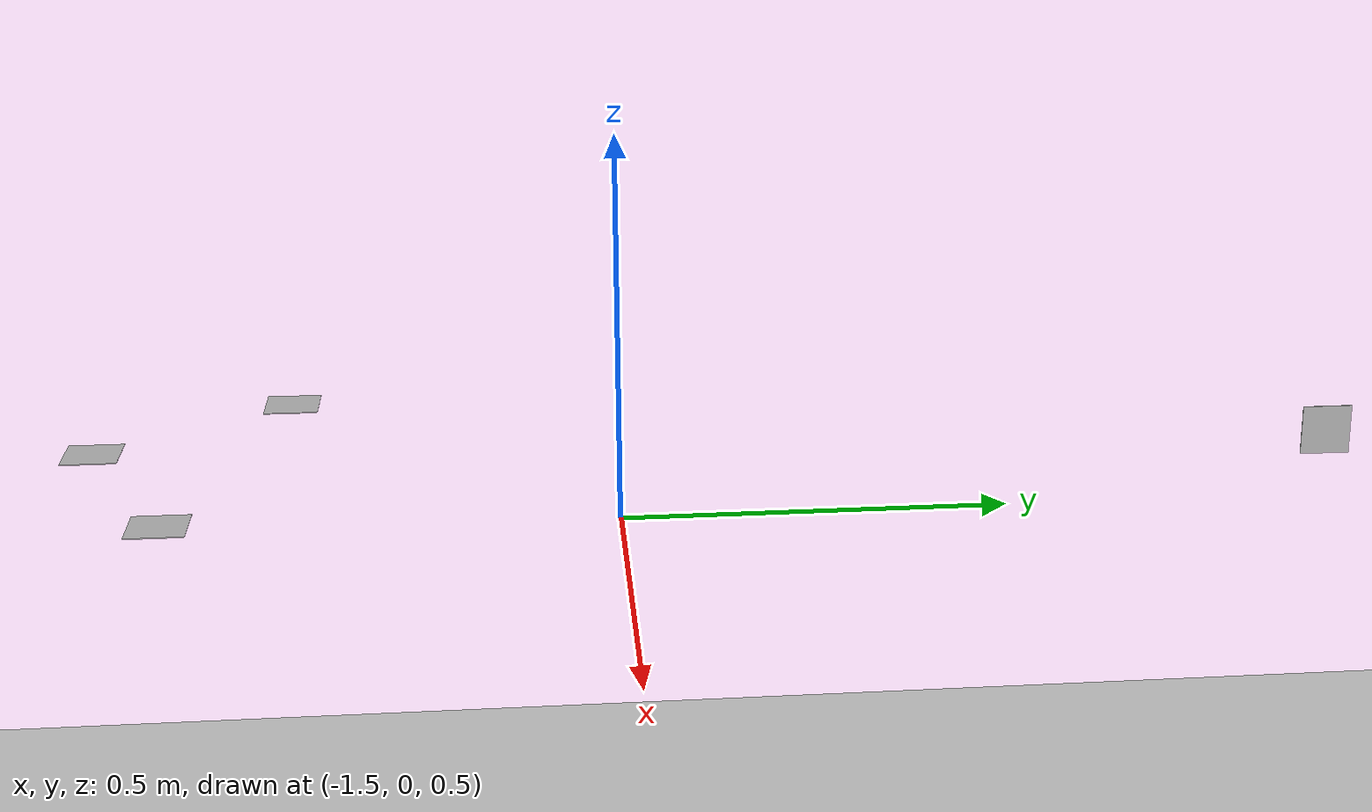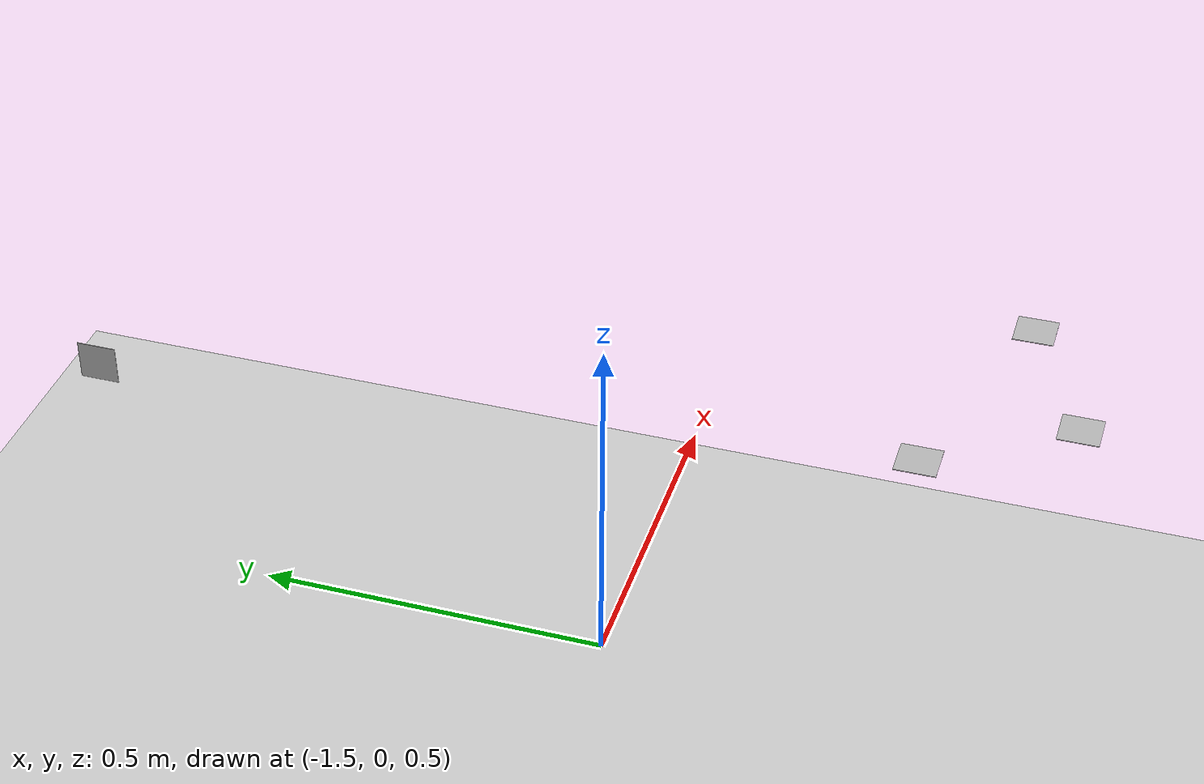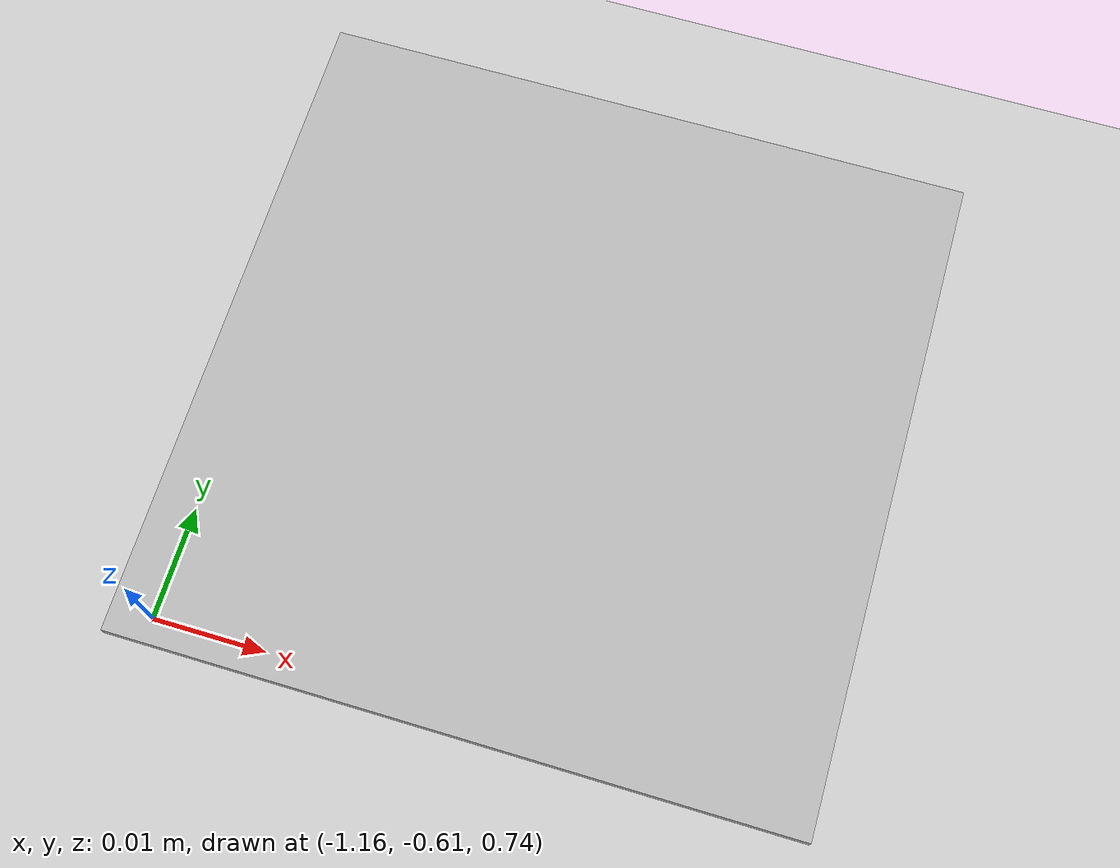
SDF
<sdf version="1.7">
 <world name="default">
  <light name="sun" type="directional">
   <pose>0 0 10 0 -0 0</pose>
   <diffuse>0.8 0.8 0.8 1</diffuse>
   <specular>0.2 0.2 0.2 1</specular>
   <attenuation>
    <range>1000</range>
    <constant>0.9</constant>
    <linear>0.01</linear>
    <quadratic>0.001</quadratic>
   </attenuation>
   <direction>-0.5 0.1 -0.9</direction>
   <spot><inner_angle>0</inner_angle><outer_angle>0</outer_angle><falloff>0</falloff></spot>
  </light>
  <model name="ground_plane">
   <static>1</static>
   <link name="link">
    <collision name="collision">
     <geometry><plane><normal>0 0 1</normal><size>100 100</size></plane></geometry>
     <surface>
      <contact><collide_bitmask>65535</collide_bitmask></contact>
      <friction><ode><mu>100</mu><mu2>50</mu2></ode></friction>
     </surface>
    </collision>
    <visual name="visual">
     <cast_shadows>0</cast_shadows>
     <geometry><plane><normal>0 0 1</normal><size>100 100</size></plane></geometry>
     <material>
      <script><uri>file://media/materials/scripts/gazebo.material</uri><name>Gazebo/Grey</name></script>
     </material>
    </visual>
   </link>
  </model>
  <gravity>0 0 -9.8</gravity>
  <magnetic_field>6e-06 2.3e-05 -4.2e-05</magnetic_field>
  <atmosphere type="adiabatic"/>
  <physics type="ode">
   <max_step_size>0.001</max_step_size>
   <real_time_factor>1</real_time_factor>
   <real_time_update_rate>1000</real_time_update_rate>
  </physics>
  <scene><ambient>0.4 0.4 0.4 1</ambient><background>0.7 0.7 0.7 1</background><shadows>1</shadows></scene>
  <spherical_coordinates>
   <surface_model>EARTH_WGS84</surface_model>
   <latitude_deg>0</latitude_deg>
   <longitude_deg>0</longitude_deg>
   <elevation>0</elevation>
   <heading_deg>0</heading_deg>
  </spherical_coordinates>
  <model name="aruco_marker_6cm_238">
   <static>0</static>
   <link name="marker">
    <inertial>
     <mass>0.1</mass>
     <inertia><ixx>0</ixx><ixy>0</ixy><ixz>0</ixz><iyy>0</iyy><iyz>0</iyz><izz>0</izz></inertia>
    </inertial>
    <visual name="visual">
     <pose>0 0 0 0 -0 1.57</pose>
     <geometry><box><size>0.06 0.06 0.001</size></box></geometry>
     <material>
      <script>
       <uri>model://aruco_marker_6cm_238/material/scripts</uri>
       <uri>model://aruco_marker_6cm_238/material/textures</uri>
       <name>Aruco/aruco_marker_6cm_238</name>
      </script>
     </material>
    </visual>
    <collision name="collision"><geometry><box><size>0.06 0.06 0.001</size></box></geometry></collision>
    <self_collide>1</self_collide>
    <gravity>0</gravity>
   </link>
   <pose>-1.29719 0.844824 0.663017 -3.1262 1.57079 -3.1262</pose>
  </model>
  <model name="aruco_marker_6cm_582">
   <static>0</static>
   <link name="marker">
    <inertial>
     <mass>0.1</mass>
     <inertia><ixx>0</ixx><ixy>0</ixy><ixz>0</ixz><iyy>0</iyy><iyz>0</iyz><izz>0</izz></inertia>
    </inertial>
    <visual name="visual">
     <pose>0 0 0 0 -0 1.57</pose>
     <geometry><box><size>0.06 0.06 0.001</size></box></geometry>
     <material>
      <script>
       <uri>model://aruco_marker_6cm_582/material/scripts</uri>
       <uri>model://aruco_marker_6cm_582/material/textures</uri>
       <name>Aruco/aruco_marker_6cm_582</name>
      </script>
     </material>
    </visual>
    <collision name="collision"><geometry><box><size>0.06 0.06 0.001</size></box></geometry></collision>
    <self_collide>1</self_collide>
   </link>
   <pose>-1.27004 -0.381021 0.745459 -0.002071 -0.002512 -7e-06</pose>
  </model>
  <model name="aruco_marker_6cm_26">
   <static>0</static>
   <link name="marker">
    <inertial>
     <mass>0.1</mass>
     <inertia><ixx>0</ixx><ixy>0</ixy><ixz>0</ixz><iyy>0</iyy><iyz>0</iyz><izz>0</izz></inertia>
    </inertial>
    <visual name="visual">
     <pose>0 0 0 0 -0 1.57</pose>
     <geometry><box><size>0.06 0.06 0.001</size></box></geometry>
     <material>
      <script>
       <uri>model://aruco_marker_6cm_26/material/scripts</uri>
       <uri>model://aruco_marker_6cm_26/material/textures</uri>
       <name>Aruco/aruco_marker_6cm_26</name>
      </script>
     </material>
    </visual>
    <collision name="collision"><geometry><box><size>0.06 0.06 0.001</size></box></geometry></collision>
    <self_collide>1</self_collide>
   </link>
   <pose>-1.13307 -0.582505 0.742078 9e-06 1.3e-05 0</pose>
  </model>
  <model name="aruco_marker_6cm_63">
   <static>0</static>
   <link name="marker">
    <inertial>
     <mass>0.1</mass>
     <inertia><ixx>0</ixx><ixy>0</ixy><ixz>0</ixz><iyy>0</iyy><iyz>0</iyz><izz>0</izz></inertia>
    </inertial>
    <visual name="visual">
     <pose>0 0 0 0 -0 1.57</pose>
     <geometry><box><size>0.06 0.06 0.001</size></box></geometry>
     <material>
      <script>
       <uri>model://aruco_marker_6cm_63/material/scripts</uri>
       <uri>model://aruco_marker_6cm_63/material/textures</uri>
       <name>Aruco/aruco_marker_6cm_63</name>
      </script>
     </material>
    </visual>
    <collision name="collision"><geometry><box><size>0.06 0.06 0.001</size></box></geometry></collision>
    <self_collide>1</self_collide>
   </link>
   <pose>-0.915221 -0.483965 0.742214 -0.001587 -0.002984 0.001348</pose>
  </model>
 </world>
</sdf>
